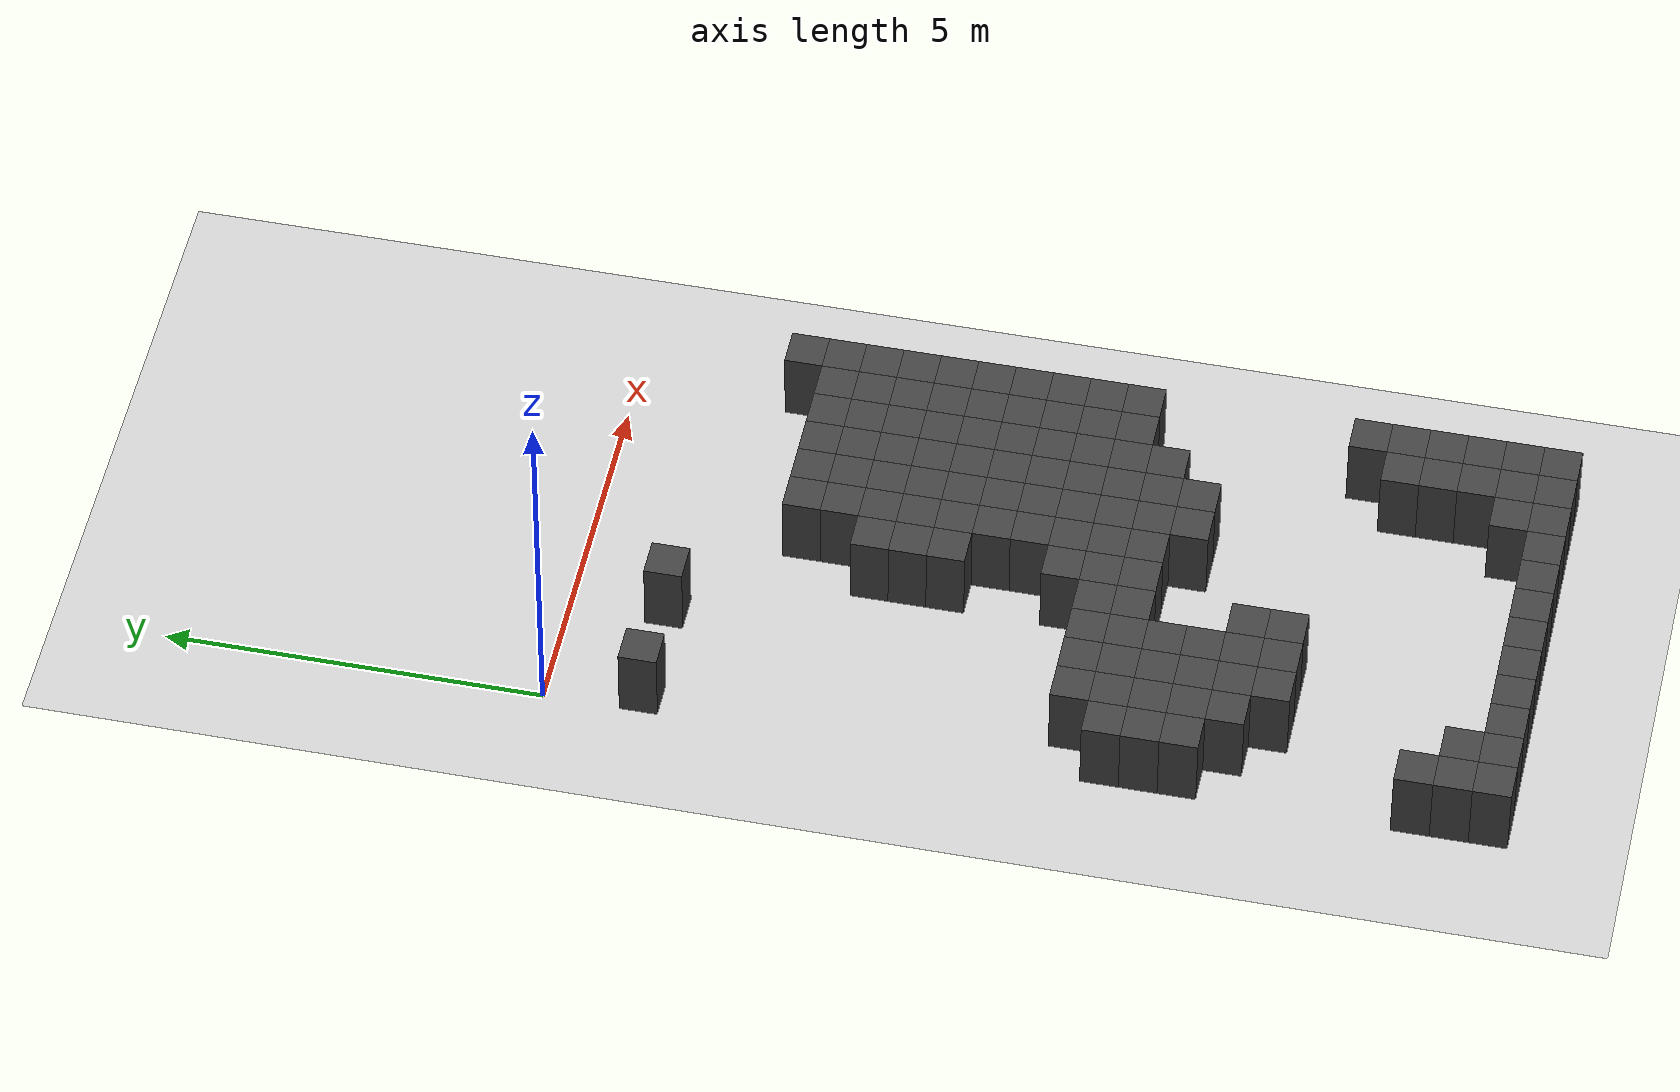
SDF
<sdf version="1.7">
 <world name="map_9061">
  <model name="ground_plane">
   <static>true</static>
   <link name="link">
    <collision name="collision">
     <geometry><plane><normal>0 0 1</normal><size>200 200</size></plane></geometry>
    </collision>
    <visual name="visual">
     <geometry><plane><normal>0 0 1</normal><size>200 200</size></plane></geometry>
     <material><ambient>0.8 0.8 0.8 1</ambient><diffuse>0.8 0.8 0.8 1</diffuse></material>
    </visual>
   </link>
  </model>
  <model name="maze_environment">
   <static>true</static>
   <link name="wall_460">
    <pose>0.250 -1.250 0.500 0 0 0</pose>
    <collision name="col"><geometry><box><size>0.5 0.5 1.0</size></box></geometry></collision>
    <visual name="vis">
     <geometry><box><size>0.5 0.5 1.0</size></box></geometry>
     <material><ambient>0.15 0.15 0.15 1</ambient><diffuse>0.25 0.25 0.25 1</diffuse></material>
    </visual>
   </link>
   <link name="wall_461">
    <pose>1.750 -1.250 0.500 0 0 0</pose>
    <collision name="col"><geometry><box><size>0.5 0.5 1.0</size></box></geometry></collision>
    <visual name="vis">
     <geometry><box><size>0.5 0.5 1.0</size></box></geometry>
     <material><ambient>0.15 0.15 0.15 1</ambient><diffuse>0.25 0.25 0.25 1</diffuse></material>
    </visual>
   </link>
   <link name="wall_498">
    <pose>5.750 -2.250 0.500 0 0 0</pose>
    <collision name="col"><geometry><box><size>0.5 0.5 1.0</size></box></geometry></collision>
    <visual name="vis">
     <geometry><box><size>0.5 0.5 1.0</size></box></geometry>
     <material><ambient>0.15 0.15 0.15 1</ambient><diffuse>0.25 0.25 0.25 1</diffuse></material>
    </visual>
   </link>
   <link name="wall_524">
    <pose>3.250 -2.750 0.500 0 0 0</pose>
    <collision name="col"><geometry><box><size>0.5 0.5 1.0</size></box></geometry></collision>
    <visual name="vis">
     <geometry><box><size>0.5 0.5 1.0</size></box></geometry>
     <material><ambient>0.15 0.15 0.15 1</ambient><diffuse>0.25 0.25 0.25 1</diffuse></material>
    </visual>
   </link>
   <link name="wall_525">
    <pose>3.750 -2.750 0.500 0 0 0</pose>
    <collision name="col"><geometry><box><size>0.5 0.5 1.0</size></box></geometry></collision>
    <visual name="vis">
     <geometry><box><size>0.5 0.5 1.0</size></box></geometry>
     <material><ambient>0.15 0.15 0.15 1</ambient><diffuse>0.25 0.25 0.25 1</diffuse></material>
    </visual>
   </link>
   <link name="wall_526">
    <pose>4.250 -2.750 0.500 0 0 0</pose>
    <collision name="col"><geometry><box><size>0.5 0.5 1.0</size></box></geometry></collision>
    <visual name="vis">
     <geometry><box><size>0.5 0.5 1.0</size></box></geometry>
     <material><ambient>0.15 0.15 0.15 1</ambient><diffuse>0.25 0.25 0.25 1</diffuse></material>
    </visual>
   </link>
   <link name="wall_527">
    <pose>4.750 -2.750 0.500 0 0 0</pose>
    <collision name="col"><geometry><box><size>0.5 0.5 1.0</size></box></geometry></collision>
    <visual name="vis">
     <geometry><box><size>0.5 0.5 1.0</size></box></geometry>
     <material><ambient>0.15 0.15 0.15 1</ambient><diffuse>0.25 0.25 0.25 1</diffuse></material>
    </visual>
   </link>
   <link name="wall_528">
    <pose>5.250 -2.750 0.500 0 0 0</pose>
    <collision name="col"><geometry><box><size>0.5 0.5 1.0</size></box></geometry></collision>
    <visual name="vis">
     <geometry><box><size>0.5 0.5 1.0</size></box></geometry>
     <material><ambient>0.15 0.15 0.15 1</ambient><diffuse>0.25 0.25 0.25 1</diffuse></material>
    </visual>
   </link>
   <link name="wall_529">
    <pose>5.750 -2.750 0.500 0 0 0</pose>
    <collision name="col"><geometry><box><size>0.5 0.5 1.0</size></box></geometry></collision>
    <visual name="vis">
     <geometry><box><size>0.5 0.5 1.0</size></box></geometry>
     <material><ambient>0.15 0.15 0.15 1</ambient><diffuse>0.25 0.25 0.25 1</diffuse></material>
    </visual>
   </link>
   <link name="wall_555">
    <pose>3.250 -3.250 0.500 0 0 0</pose>
    <collision name="col"><geometry><box><size>0.5 0.5 1.0</size></box></geometry></collision>
    <visual name="vis">
     <geometry><box><size>0.5 0.5 1.0</size></box></geometry>
     <material><ambient>0.15 0.15 0.15 1</ambient><diffuse>0.25 0.25 0.25 1</diffuse></material>
    </visual>
   </link>
   <link name="wall_556">
    <pose>3.750 -3.250 0.500 0 0 0</pose>
    <collision name="col"><geometry><box><size>0.5 0.5 1.0</size></box></geometry></collision>
    <visual name="vis">
     <geometry><box><size>0.5 0.5 1.0</size></box></geometry>
     <material><ambient>0.15 0.15 0.15 1</ambient><diffuse>0.25 0.25 0.25 1</diffuse></material>
    </visual>
   </link>
   <link name="wall_557">
    <pose>4.250 -3.250 0.500 0 0 0</pose>
    <collision name="col"><geometry><box><size>0.5 0.5 1.0</size></box></geometry></collision>
    <visual name="vis">
     <geometry><box><size>0.5 0.5 1.0</size></box></geometry>
     <material><ambient>0.15 0.15 0.15 1</ambient><diffuse>0.25 0.25 0.25 1</diffuse></material>
    </visual>
   </link>
   <link name="wall_558">
    <pose>4.750 -3.250 0.500 0 0 0</pose>
    <collision name="col"><geometry><box><size>0.5 0.5 1.0</size></box></geometry></collision>
    <visual name="vis">
     <geometry><box><size>0.5 0.5 1.0</size></box></geometry>
     <material><ambient>0.15 0.15 0.15 1</ambient><diffuse>0.25 0.25 0.25 1</diffuse></material>
    </visual>
   </link>
   <link name="wall_559">
    <pose>5.250 -3.250 0.500 0 0 0</pose>
    <collision name="col"><geometry><box><size>0.5 0.5 1.0</size></box></geometry></collision>
    <visual name="vis">
     <geometry><box><size>0.5 0.5 1.0</size></box></geometry>
     <material><ambient>0.15 0.15 0.15 1</ambient><diffuse>0.25 0.25 0.25 1</diffuse></material>
    </visual>
   </link>
   <link name="wall_560">
    <pose>5.750 -3.250 0.500 0 0 0</pose>
    <collision name="col"><geometry><box><size>0.5 0.5 1.0</size></box></geometry></collision>
    <visual name="vis">
     <geometry><box><size>0.5 0.5 1.0</size></box></geometry>
     <material><ambient>0.15 0.15 0.15 1</ambient><diffuse>0.25 0.25 0.25 1</diffuse></material>
    </visual>
   </link>
   <link name="wall_584">
    <pose>2.750 -3.750 0.500 0 0 0</pose>
    <collision name="col"><geometry><box><size>0.5 0.5 1.0</size></box></geometry></collision>
    <visual name="vis">
     <geometry><box><size>0.5 0.5 1.0</size></box></geometry>
     <material><ambient>0.15 0.15 0.15 1</ambient><diffuse>0.25 0.25 0.25 1</diffuse></material>
    </visual>
   </link>
   <link name="wall_585">
    <pose>3.250 -3.750 0.500 0 0 0</pose>
    <collision name="col"><geometry><box><size>0.5 0.5 1.0</size></box></geometry></collision>
    <visual name="vis">
     <geometry><box><size>0.5 0.5 1.0</size></box></geometry>
     <material><ambient>0.15 0.15 0.15 1</ambient><diffuse>0.25 0.25 0.25 1</diffuse></material>
    </visual>
   </link>
   <link name="wall_586">
    <pose>3.750 -3.750 0.500 0 0 0</pose>
    <collision name="col"><geometry><box><size>0.5 0.5 1.0</size></box></geometry></collision>
    <visual name="vis">
     <geometry><box><size>0.5 0.5 1.0</size></box></geometry>
     <material><ambient>0.15 0.15 0.15 1</ambient><diffuse>0.25 0.25 0.25 1</diffuse></material>
    </visual>
   </link>
   <link name="wall_587">
    <pose>4.250 -3.750 0.500 0 0 0</pose>
    <collision name="col"><geometry><box><size>0.5 0.5 1.0</size></box></geometry></collision>
    <visual name="vis">
     <geometry><box><size>0.5 0.5 1.0</size></box></geometry>
     <material><ambient>0.15 0.15 0.15 1</ambient><diffuse>0.25 0.25 0.25 1</diffuse></material>
    </visual>
   </link>
   <link name="wall_588">
    <pose>4.750 -3.750 0.500 0 0 0</pose>
    <collision name="col"><geometry><box><size>0.5 0.5 1.0</size></box></geometry></collision>
    <visual name="vis">
     <geometry><box><size>0.5 0.5 1.0</size></box></geometry>
     <material><ambient>0.15 0.15 0.15 1</ambient><diffuse>0.25 0.25 0.25 1</diffuse></material>
    </visual>
   </link>
   <link name="wall_589">
    <pose>5.250 -3.750 0.500 0 0 0</pose>
    <collision name="col"><geometry><box><size>0.5 0.5 1.0</size></box></geometry></collision>
    <visual name="vis">
     <geometry><box><size>0.5 0.5 1.0</size></box></geometry>
     <material><ambient>0.15 0.15 0.15 1</ambient><diffuse>0.25 0.25 0.25 1</diffuse></material>
    </visual>
   </link>
   <link name="wall_590">
    <pose>5.750 -3.750 0.500 0 0 0</pose>
    <collision name="col"><geometry><box><size>0.5 0.5 1.0</size></box></geometry></collision>
    <visual name="vis">
     <geometry><box><size>0.5 0.5 1.0</size></box></geometry>
     <material><ambient>0.15 0.15 0.15 1</ambient><diffuse>0.25 0.25 0.25 1</diffuse></material>
    </visual>
   </link>
   <link name="wall_610">
    <pose>2.750 -4.250 0.500 0 0 0</pose>
    <collision name="col"><geometry><box><size>0.5 0.5 1.0</size></box></geometry></collision>
    <visual name="vis">
     <geometry><box><size>0.5 0.5 1.0</size></box></geometry>
     <material><ambient>0.15 0.15 0.15 1</ambient><diffuse>0.25 0.25 0.25 1</diffuse></material>
    </visual>
   </link>
   <link name="wall_611">
    <pose>3.250 -4.250 0.500 0 0 0</pose>
    <collision name="col"><geometry><box><size>0.5 0.5 1.0</size></box></geometry></collision>
    <visual name="vis">
     <geometry><box><size>0.5 0.5 1.0</size></box></geometry>
     <material><ambient>0.15 0.15 0.15 1</ambient><diffuse>0.25 0.25 0.25 1</diffuse></material>
    </visual>
   </link>
   <link name="wall_612">
    <pose>3.750 -4.250 0.500 0 0 0</pose>
    <collision name="col"><geometry><box><size>0.5 0.5 1.0</size></box></geometry></collision>
    <visual name="vis">
     <geometry><box><size>0.5 0.5 1.0</size></box></geometry>
     <material><ambient>0.15 0.15 0.15 1</ambient><diffuse>0.25 0.25 0.25 1</diffuse></material>
    </visual>
   </link>
   <link name="wall_613">
    <pose>4.250 -4.250 0.500 0 0 0</pose>
    <collision name="col"><geometry><box><size>0.5 0.5 1.0</size></box></geometry></collision>
    <visual name="vis">
     <geometry><box><size>0.5 0.5 1.0</size></box></geometry>
     <material><ambient>0.15 0.15 0.15 1</ambient><diffuse>0.25 0.25 0.25 1</diffuse></material>
    </visual>
   </link>
   <link name="wall_614">
    <pose>4.750 -4.250 0.500 0 0 0</pose>
    <collision name="col"><geometry><box><size>0.5 0.5 1.0</size></box></geometry></collision>
    <visual name="vis">
     <geometry><box><size>0.5 0.5 1.0</size></box></geometry>
     <material><ambient>0.15 0.15 0.15 1</ambient><diffuse>0.25 0.25 0.25 1</diffuse></material>
    </visual>
   </link>
   <link name="wall_615">
    <pose>5.250 -4.250 0.500 0 0 0</pose>
    <collision name="col"><geometry><box><size>0.5 0.5 1.0</size></box></geometry></collision>
    <visual name="vis">
     <geometry><box><size>0.5 0.5 1.0</size></box></geometry>
     <material><ambient>0.15 0.15 0.15 1</ambient><diffuse>0.25 0.25 0.25 1</diffuse></material>
    </visual>
   </link>
   <link name="wall_616">
    <pose>5.750 -4.250 0.500 0 0 0</pose>
    <collision name="col"><geometry><box><size>0.5 0.5 1.0</size></box></geometry></collision>
    <visual name="vis">
     <geometry><box><size>0.5 0.5 1.0</size></box></geometry>
     <material><ambient>0.15 0.15 0.15 1</ambient><diffuse>0.25 0.25 0.25 1</diffuse></material>
    </visual>
   </link>
   <link name="wall_630">
    <pose>2.750 -4.750 0.500 0 0 0</pose>
    <collision name="col"><geometry><box><size>0.5 0.5 1.0</size></box></geometry></collision>
    <visual name="vis">
     <geometry><box><size>0.5 0.5 1.0</size></box></geometry>
     <material><ambient>0.15 0.15 0.15 1</ambient><diffuse>0.25 0.25 0.25 1</diffuse></material>
    </visual>
   </link>
   <link name="wall_631">
    <pose>3.250 -4.750 0.500 0 0 0</pose>
    <collision name="col"><geometry><box><size>0.5 0.5 1.0</size></box></geometry></collision>
    <visual name="vis">
     <geometry><box><size>0.5 0.5 1.0</size></box></geometry>
     <material><ambient>0.15 0.15 0.15 1</ambient><diffuse>0.25 0.25 0.25 1</diffuse></material>
    </visual>
   </link>
   <link name="wall_632">
    <pose>3.750 -4.750 0.500 0 0 0</pose>
    <collision name="col"><geometry><box><size>0.5 0.5 1.0</size></box></geometry></collision>
    <visual name="vis">
     <geometry><box><size>0.5 0.5 1.0</size></box></geometry>
     <material><ambient>0.15 0.15 0.15 1</ambient><diffuse>0.25 0.25 0.25 1</diffuse></material>
    </visual>
   </link>
   <link name="wall_633">
    <pose>4.250 -4.750 0.500 0 0 0</pose>
    <collision name="col"><geometry><box><size>0.5 0.5 1.0</size></box></geometry></collision>
    <visual name="vis">
     <geometry><box><size>0.5 0.5 1.0</size></box></geometry>
     <material><ambient>0.15 0.15 0.15 1</ambient><diffuse>0.25 0.25 0.25 1</diffuse></material>
    </visual>
   </link>
   <link name="wall_634">
    <pose>4.750 -4.750 0.500 0 0 0</pose>
    <collision name="col"><geometry><box><size>0.5 0.5 1.0</size></box></geometry></collision>
    <visual name="vis">
     <geometry><box><size>0.5 0.5 1.0</size></box></geometry>
     <material><ambient>0.15 0.15 0.15 1</ambient><diffuse>0.25 0.25 0.25 1</diffuse></material>
    </visual>
   </link>
   <link name="wall_635">
    <pose>5.250 -4.750 0.500 0 0 0</pose>
    <collision name="col"><geometry><box><size>0.5 0.5 1.0</size></box></geometry></collision>
    <visual name="vis">
     <geometry><box><size>0.5 0.5 1.0</size></box></geometry>
     <material><ambient>0.15 0.15 0.15 1</ambient><diffuse>0.25 0.25 0.25 1</diffuse></material>
    </visual>
   </link>
   <link name="wall_636">
    <pose>5.750 -4.750 0.500 0 0 0</pose>
    <collision name="col"><geometry><box><size>0.5 0.5 1.0</size></box></geometry></collision>
    <visual name="vis">
     <geometry><box><size>0.5 0.5 1.0</size></box></geometry>
     <material><ambient>0.15 0.15 0.15 1</ambient><diffuse>0.25 0.25 0.25 1</diffuse></material>
    </visual>
   </link>
   <link name="wall_646">
    <pose>3.250 -5.250 0.500 0 0 0</pose>
    <collision name="col"><geometry><box><size>0.5 0.5 1.0</size></box></geometry></collision>
    <visual name="vis">
     <geometry><box><size>0.5 0.5 1.0</size></box></geometry>
     <material><ambient>0.15 0.15 0.15 1</ambient><diffuse>0.25 0.25 0.25 1</diffuse></material>
    </visual>
   </link>
   <link name="wall_647">
    <pose>3.750 -5.250 0.500 0 0 0</pose>
    <collision name="col"><geometry><box><size>0.5 0.5 1.0</size></box></geometry></collision>
    <visual name="vis">
     <geometry><box><size>0.5 0.5 1.0</size></box></geometry>
     <material><ambient>0.15 0.15 0.15 1</ambient><diffuse>0.25 0.25 0.25 1</diffuse></material>
    </visual>
   </link>
   <link name="wall_648">
    <pose>4.250 -5.250 0.500 0 0 0</pose>
    <collision name="col"><geometry><box><size>0.5 0.5 1.0</size></box></geometry></collision>
    <visual name="vis">
     <geometry><box><size>0.5 0.5 1.0</size></box></geometry>
     <material><ambient>0.15 0.15 0.15 1</ambient><diffuse>0.25 0.25 0.25 1</diffuse></material>
    </visual>
   </link>
   <link name="wall_649">
    <pose>4.750 -5.250 0.500 0 0 0</pose>
    <collision name="col"><geometry><box><size>0.5 0.5 1.0</size></box></geometry></collision>
    <visual name="vis">
     <geometry><box><size>0.5 0.5 1.0</size></box></geometry>
     <material><ambient>0.15 0.15 0.15 1</ambient><diffuse>0.25 0.25 0.25 1</diffuse></material>
    </visual>
   </link>
   <link name="wall_650">
    <pose>5.250 -5.250 0.500 0 0 0</pose>
    <collision name="col"><geometry><box><size>0.5 0.5 1.0</size></box></geometry></collision>
    <visual name="vis">
     <geometry><box><size>0.5 0.5 1.0</size></box></geometry>
     <material><ambient>0.15 0.15 0.15 1</ambient><diffuse>0.25 0.25 0.25 1</diffuse></material>
    </visual>
   </link>
   <link name="wall_651">
    <pose>5.750 -5.250 0.500 0 0 0</pose>
    <collision name="col"><geometry><box><size>0.5 0.5 1.0</size></box></geometry></collision>
    <visual name="vis">
     <geometry><box><size>0.5 0.5 1.0</size></box></geometry>
     <material><ambient>0.15 0.15 0.15 1</ambient><diffuse>0.25 0.25 0.25 1</diffuse></material>
    </visual>
   </link>
   <link name="wall_661">
    <pose>3.250 -5.750 0.500 0 0 0</pose>
    <collision name="col"><geometry><box><size>0.5 0.5 1.0</size></box></geometry></collision>
    <visual name="vis">
     <geometry><box><size>0.5 0.5 1.0</size></box></geometry>
     <material><ambient>0.15 0.15 0.15 1</ambient><diffuse>0.25 0.25 0.25 1</diffuse></material>
    </visual>
   </link>
   <link name="wall_662">
    <pose>3.750 -5.750 0.500 0 0 0</pose>
    <collision name="col"><geometry><box><size>0.5 0.5 1.0</size></box></geometry></collision>
    <visual name="vis">
     <geometry><box><size>0.5 0.5 1.0</size></box></geometry>
     <material><ambient>0.15 0.15 0.15 1</ambient><diffuse>0.25 0.25 0.25 1</diffuse></material>
    </visual>
   </link>
   <link name="wall_663">
    <pose>4.250 -5.750 0.500 0 0 0</pose>
    <collision name="col"><geometry><box><size>0.5 0.5 1.0</size></box></geometry></collision>
    <visual name="vis">
     <geometry><box><size>0.5 0.5 1.0</size></box></geometry>
     <material><ambient>0.15 0.15 0.15 1</ambient><diffuse>0.25 0.25 0.25 1</diffuse></material>
    </visual>
   </link>
   <link name="wall_664">
    <pose>4.750 -5.750 0.500 0 0 0</pose>
    <collision name="col"><geometry><box><size>0.5 0.5 1.0</size></box></geometry></collision>
    <visual name="vis">
     <geometry><box><size>0.5 0.5 1.0</size></box></geometry>
     <material><ambient>0.15 0.15 0.15 1</ambient><diffuse>0.25 0.25 0.25 1</diffuse></material>
    </visual>
   </link>
   <link name="wall_665">
    <pose>5.250 -5.750 0.500 0 0 0</pose>
    <collision name="col"><geometry><box><size>0.5 0.5 1.0</size></box></geometry></collision>
    <visual name="vis">
     <geometry><box><size>0.5 0.5 1.0</size></box></geometry>
     <material><ambient>0.15 0.15 0.15 1</ambient><diffuse>0.25 0.25 0.25 1</diffuse></material>
    </visual>
   </link>
   <link name="wall_666">
    <pose>5.750 -5.750 0.500 0 0 0</pose>
    <collision name="col"><geometry><box><size>0.5 0.5 1.0</size></box></geometry></collision>
    <visual name="vis">
     <geometry><box><size>0.5 0.5 1.0</size></box></geometry>
     <material><ambient>0.15 0.15 0.15 1</ambient><diffuse>0.25 0.25 0.25 1</diffuse></material>
    </visual>
   </link>
   <link name="wall_678">
    <pose>2.750 -6.250 0.500 0 0 0</pose>
    <collision name="col"><geometry><box><size>0.5 0.5 1.0</size></box></geometry></collision>
    <visual name="vis">
     <geometry><box><size>0.5 0.5 1.0</size></box></geometry>
     <material><ambient>0.15 0.15 0.15 1</ambient><diffuse>0.25 0.25 0.25 1</diffuse></material>
    </visual>
   </link>
   <link name="wall_679">
    <pose>3.250 -6.250 0.500 0 0 0</pose>
    <collision name="col"><geometry><box><size>0.5 0.5 1.0</size></box></geometry></collision>
    <visual name="vis">
     <geometry><box><size>0.5 0.5 1.0</size></box></geometry>
     <material><ambient>0.15 0.15 0.15 1</ambient><diffuse>0.25 0.25 0.25 1</diffuse></material>
    </visual>
   </link>
   <link name="wall_680">
    <pose>3.750 -6.250 0.500 0 0 0</pose>
    <collision name="col"><geometry><box><size>0.5 0.5 1.0</size></box></geometry></collision>
    <visual name="vis">
     <geometry><box><size>0.5 0.5 1.0</size></box></geometry>
     <material><ambient>0.15 0.15 0.15 1</ambient><diffuse>0.25 0.25 0.25 1</diffuse></material>
    </visual>
   </link>
   <link name="wall_681">
    <pose>4.250 -6.250 0.500 0 0 0</pose>
    <collision name="col"><geometry><box><size>0.5 0.5 1.0</size></box></geometry></collision>
    <visual name="vis">
     <geometry><box><size>0.5 0.5 1.0</size></box></geometry>
     <material><ambient>0.15 0.15 0.15 1</ambient><diffuse>0.25 0.25 0.25 1</diffuse></material>
    </visual>
   </link>
   <link name="wall_682">
    <pose>4.750 -6.250 0.500 0 0 0</pose>
    <collision name="col"><geometry><box><size>0.5 0.5 1.0</size></box></geometry></collision>
    <visual name="vis">
     <geometry><box><size>0.5 0.5 1.0</size></box></geometry>
     <material><ambient>0.15 0.15 0.15 1</ambient><diffuse>0.25 0.25 0.25 1</diffuse></material>
    </visual>
   </link>
   <link name="wall_683">
    <pose>5.250 -6.250 0.500 0 0 0</pose>
    <collision name="col"><geometry><box><size>0.5 0.5 1.0</size></box></geometry></collision>
    <visual name="vis">
     <geometry><box><size>0.5 0.5 1.0</size></box></geometry>
     <material><ambient>0.15 0.15 0.15 1</ambient><diffuse>0.25 0.25 0.25 1</diffuse></material>
    </visual>
   </link>
   <link name="wall_684">
    <pose>5.750 -6.250 0.500 0 0 0</pose>
    <collision name="col"><geometry><box><size>0.5 0.5 1.0</size></box></geometry></collision>
    <visual name="vis">
     <geometry><box><size>0.5 0.5 1.0</size></box></geometry>
     <material><ambient>0.15 0.15 0.15 1</ambient><diffuse>0.25 0.25 0.25 1</diffuse></material>
    </visual>
   </link>
   <link name="wall_695">
    <pose>0.750 -6.750 0.500 0 0 0</pose>
    <collision name="col"><geometry><box><size>0.5 0.5 1.0</size></box></geometry></collision>
    <visual name="vis">
     <geometry><box><size>0.5 0.5 1.0</size></box></geometry>
     <material><ambient>0.15 0.15 0.15 1</ambient><diffuse>0.25 0.25 0.25 1</diffuse></material>
    </visual>
   </link>
   <link name="wall_696">
    <pose>1.250 -6.750 0.500 0 0 0</pose>
    <collision name="col"><geometry><box><size>0.5 0.5 1.0</size></box></geometry></collision>
    <visual name="vis">
     <geometry><box><size>0.5 0.5 1.0</size></box></geometry>
     <material><ambient>0.15 0.15 0.15 1</ambient><diffuse>0.25 0.25 0.25 1</diffuse></material>
    </visual>
   </link>
   <link name="wall_697">
    <pose>1.750 -6.750 0.500 0 0 0</pose>
    <collision name="col"><geometry><box><size>0.5 0.5 1.0</size></box></geometry></collision>
    <visual name="vis">
     <geometry><box><size>0.5 0.5 1.0</size></box></geometry>
     <material><ambient>0.15 0.15 0.15 1</ambient><diffuse>0.25 0.25 0.25 1</diffuse></material>
    </visual>
   </link>
   <link name="wall_698">
    <pose>2.250 -6.750 0.500 0 0 0</pose>
    <collision name="col"><geometry><box><size>0.5 0.5 1.0</size></box></geometry></collision>
    <visual name="vis">
     <geometry><box><size>0.5 0.5 1.0</size></box></geometry>
     <material><ambient>0.15 0.15 0.15 1</ambient><diffuse>0.25 0.25 0.25 1</diffuse></material>
    </visual>
   </link>
   <link name="wall_699">
    <pose>2.750 -6.750 0.500 0 0 0</pose>
    <collision name="col"><geometry><box><size>0.5 0.5 1.0</size></box></geometry></collision>
    <visual name="vis">
     <geometry><box><size>0.5 0.5 1.0</size></box></geometry>
     <material><ambient>0.15 0.15 0.15 1</ambient><diffuse>0.25 0.25 0.25 1</diffuse></material>
    </visual>
   </link>
   <link name="wall_700">
    <pose>3.250 -6.750 0.500 0 0 0</pose>
    <collision name="col"><geometry><box><size>0.5 0.5 1.0</size></box></geometry></collision>
    <visual name="vis">
     <geometry><box><size>0.5 0.5 1.0</size></box></geometry>
     <material><ambient>0.15 0.15 0.15 1</ambient><diffuse>0.25 0.25 0.25 1</diffuse></material>
    </visual>
   </link>
   <link name="wall_701">
    <pose>3.750 -6.750 0.500 0 0 0</pose>
    <collision name="col"><geometry><box><size>0.5 0.5 1.0</size></box></geometry></collision>
    <visual name="vis">
     <geometry><box><size>0.5 0.5 1.0</size></box></geometry>
     <material><ambient>0.15 0.15 0.15 1</ambient><diffuse>0.25 0.25 0.25 1</diffuse></material>
    </visual>
   </link>
   <link name="wall_702">
    <pose>4.250 -6.750 0.500 0 0 0</pose>
    <collision name="col"><geometry><box><size>0.5 0.5 1.0</size></box></geometry></collision>
    <visual name="vis">
     <geometry><box><size>0.5 0.5 1.0</size></box></geometry>
     <material><ambient>0.15 0.15 0.15 1</ambient><diffuse>0.25 0.25 0.25 1</diffuse></material>
    </visual>
   </link>
   <link name="wall_703">
    <pose>4.750 -6.750 0.500 0 0 0</pose>
    <collision name="col"><geometry><box><size>0.5 0.5 1.0</size></box></geometry></collision>
    <visual name="vis">
     <geometry><box><size>0.5 0.5 1.0</size></box></geometry>
     <material><ambient>0.15 0.15 0.15 1</ambient><diffuse>0.25 0.25 0.25 1</diffuse></material>
    </visual>
   </link>
   <link name="wall_704">
    <pose>5.250 -6.750 0.500 0 0 0</pose>
    <collision name="col"><geometry><box><size>0.5 0.5 1.0</size></box></geometry></collision>
    <visual name="vis">
     <geometry><box><size>0.5 0.5 1.0</size></box></geometry>
     <material><ambient>0.15 0.15 0.15 1</ambient><diffuse>0.25 0.25 0.25 1</diffuse></material>
    </visual>
   </link>
   <link name="wall_705">
    <pose>5.750 -6.750 0.500 0 0 0</pose>
    <collision name="col"><geometry><box><size>0.5 0.5 1.0</size></box></geometry></collision>
    <visual name="vis">
     <geometry><box><size>0.5 0.5 1.0</size></box></geometry>
     <material><ambient>0.15 0.15 0.15 1</ambient><diffuse>0.25 0.25 0.25 1</diffuse></material>
    </visual>
   </link>
   <link name="wall_713">
    <pose>0.250 -7.250 0.500 0 0 0</pose>
    <collision name="col"><geometry><box><size>0.5 0.5 1.0</size></box></geometry></collision>
    <visual name="vis">
     <geometry><box><size>0.5 0.5 1.0</size></box></geometry>
     <material><ambient>0.15 0.15 0.15 1</ambient><diffuse>0.25 0.25 0.25 1</diffuse></material>
    </visual>
   </link>
   <link name="wall_714">
    <pose>0.750 -7.250 0.500 0 0 0</pose>
    <collision name="col"><geometry><box><size>0.5 0.5 1.0</size></box></geometry></collision>
    <visual name="vis">
     <geometry><box><size>0.5 0.5 1.0</size></box></geometry>
     <material><ambient>0.15 0.15 0.15 1</ambient><diffuse>0.25 0.25 0.25 1</diffuse></material>
    </visual>
   </link>
   <link name="wall_715">
    <pose>1.250 -7.250 0.500 0 0 0</pose>
    <collision name="col"><geometry><box><size>0.5 0.5 1.0</size></box></geometry></collision>
    <visual name="vis">
     <geometry><box><size>0.5 0.5 1.0</size></box></geometry>
     <material><ambient>0.15 0.15 0.15 1</ambient><diffuse>0.25 0.25 0.25 1</diffuse></material>
    </visual>
   </link>
   <link name="wall_716">
    <pose>1.750 -7.250 0.500 0 0 0</pose>
    <collision name="col"><geometry><box><size>0.5 0.5 1.0</size></box></geometry></collision>
    <visual name="vis">
     <geometry><box><size>0.5 0.5 1.0</size></box></geometry>
     <material><ambient>0.15 0.15 0.15 1</ambient><diffuse>0.25 0.25 0.25 1</diffuse></material>
    </visual>
   </link>
   <link name="wall_717">
    <pose>2.250 -7.250 0.500 0 0 0</pose>
    <collision name="col"><geometry><box><size>0.5 0.5 1.0</size></box></geometry></collision>
    <visual name="vis">
     <geometry><box><size>0.5 0.5 1.0</size></box></geometry>
     <material><ambient>0.15 0.15 0.15 1</ambient><diffuse>0.25 0.25 0.25 1</diffuse></material>
    </visual>
   </link>
   <link name="wall_718">
    <pose>2.750 -7.250 0.500 0 0 0</pose>
    <collision name="col"><geometry><box><size>0.5 0.5 1.0</size></box></geometry></collision>
    <visual name="vis">
     <geometry><box><size>0.5 0.5 1.0</size></box></geometry>
     <material><ambient>0.15 0.15 0.15 1</ambient><diffuse>0.25 0.25 0.25 1</diffuse></material>
    </visual>
   </link>
   <link name="wall_719">
    <pose>3.250 -7.250 0.500 0 0 0</pose>
    <collision name="col"><geometry><box><size>0.5 0.5 1.0</size></box></geometry></collision>
    <visual name="vis">
     <geometry><box><size>0.5 0.5 1.0</size></box></geometry>
     <material><ambient>0.15 0.15 0.15 1</ambient><diffuse>0.25 0.25 0.25 1</diffuse></material>
    </visual>
   </link>
   <link name="wall_720">
    <pose>3.750 -7.250 0.500 0 0 0</pose>
    <collision name="col"><geometry><box><size>0.5 0.5 1.0</size></box></geometry></collision>
    <visual name="vis">
     <geometry><box><size>0.5 0.5 1.0</size></box></geometry>
     <material><ambient>0.15 0.15 0.15 1</ambient><diffuse>0.25 0.25 0.25 1</diffuse></material>
    </visual>
   </link>
   <link name="wall_721">
    <pose>4.250 -7.250 0.500 0 0 0</pose>
    <collision name="col"><geometry><box><size>0.5 0.5 1.0</size></box></geometry></collision>
    <visual name="vis">
     <geometry><box><size>0.5 0.5 1.0</size></box></geometry>
     <material><ambient>0.15 0.15 0.15 1</ambient><diffuse>0.25 0.25 0.25 1</diffuse></material>
    </visual>
   </link>
   <link name="wall_722">
    <pose>4.750 -7.250 0.500 0 0 0</pose>
    <collision name="col"><geometry><box><size>0.5 0.5 1.0</size></box></geometry></collision>
    <visual name="vis">
     <geometry><box><size>0.5 0.5 1.0</size></box></geometry>
     <material><ambient>0.15 0.15 0.15 1</ambient><diffuse>0.25 0.25 0.25 1</diffuse></material>
    </visual>
   </link>
   <link name="wall_730">
    <pose>0.250 -7.750 0.500 0 0 0</pose>
    <collision name="col"><geometry><box><size>0.5 0.5 1.0</size></box></geometry></collision>
    <visual name="vis">
     <geometry><box><size>0.5 0.5 1.0</size></box></geometry>
     <material><ambient>0.15 0.15 0.15 1</ambient><diffuse>0.25 0.25 0.25 1</diffuse></material>
    </visual>
   </link>
   <link name="wall_731">
    <pose>0.750 -7.750 0.500 0 0 0</pose>
    <collision name="col"><geometry><box><size>0.5 0.5 1.0</size></box></geometry></collision>
    <visual name="vis">
     <geometry><box><size>0.5 0.5 1.0</size></box></geometry>
     <material><ambient>0.15 0.15 0.15 1</ambient><diffuse>0.25 0.25 0.25 1</diffuse></material>
    </visual>
   </link>
   <link name="wall_732">
    <pose>1.250 -7.750 0.500 0 0 0</pose>
    <collision name="col"><geometry><box><size>0.5 0.5 1.0</size></box></geometry></collision>
    <visual name="vis">
     <geometry><box><size>0.5 0.5 1.0</size></box></geometry>
     <material><ambient>0.15 0.15 0.15 1</ambient><diffuse>0.25 0.25 0.25 1</diffuse></material>
    </visual>
   </link>
   <link name="wall_733">
    <pose>1.750 -7.750 0.500 0 0 0</pose>
    <collision name="col"><geometry><box><size>0.5 0.5 1.0</size></box></geometry></collision>
    <visual name="vis">
     <geometry><box><size>0.5 0.5 1.0</size></box></geometry>
     <material><ambient>0.15 0.15 0.15 1</ambient><diffuse>0.25 0.25 0.25 1</diffuse></material>
    </visual>
   </link>
   <link name="wall_734">
    <pose>3.750 -7.750 0.500 0 0 0</pose>
    <collision name="col"><geometry><box><size>0.5 0.5 1.0</size></box></geometry></collision>
    <visual name="vis">
     <geometry><box><size>0.5 0.5 1.0</size></box></geometry>
     <material><ambient>0.15 0.15 0.15 1</ambient><diffuse>0.25 0.25 0.25 1</diffuse></material>
    </visual>
   </link>
   <link name="wall_735">
    <pose>4.250 -7.750 0.500 0 0 0</pose>
    <collision name="col"><geometry><box><size>0.5 0.5 1.0</size></box></geometry></collision>
    <visual name="vis">
     <geometry><box><size>0.5 0.5 1.0</size></box></geometry>
     <material><ambient>0.15 0.15 0.15 1</ambient><diffuse>0.25 0.25 0.25 1</diffuse></material>
    </visual>
   </link>
   <link name="wall_741">
    <pose>0.250 -8.250 0.500 0 0 0</pose>
    <collision name="col"><geometry><box><size>0.5 0.5 1.0</size></box></geometry></collision>
    <visual name="vis">
     <geometry><box><size>0.5 0.5 1.0</size></box></geometry>
     <material><ambient>0.15 0.15 0.15 1</ambient><diffuse>0.25 0.25 0.25 1</diffuse></material>
    </visual>
   </link>
   <link name="wall_742">
    <pose>0.750 -8.250 0.500 0 0 0</pose>
    <collision name="col"><geometry><box><size>0.5 0.5 1.0</size></box></geometry></collision>
    <visual name="vis">
     <geometry><box><size>0.5 0.5 1.0</size></box></geometry>
     <material><ambient>0.15 0.15 0.15 1</ambient><diffuse>0.25 0.25 0.25 1</diffuse></material>
    </visual>
   </link>
   <link name="wall_743">
    <pose>1.250 -8.250 0.500 0 0 0</pose>
    <collision name="col"><geometry><box><size>0.5 0.5 1.0</size></box></geometry></collision>
    <visual name="vis">
     <geometry><box><size>0.5 0.5 1.0</size></box></geometry>
     <material><ambient>0.15 0.15 0.15 1</ambient><diffuse>0.25 0.25 0.25 1</diffuse></material>
    </visual>
   </link>
   <link name="wall_744">
    <pose>1.750 -8.250 0.500 0 0 0</pose>
    <collision name="col"><geometry><box><size>0.5 0.5 1.0</size></box></geometry></collision>
    <visual name="vis">
     <geometry><box><size>0.5 0.5 1.0</size></box></geometry>
     <material><ambient>0.15 0.15 0.15 1</ambient><diffuse>0.25 0.25 0.25 1</diffuse></material>
    </visual>
   </link>
   <link name="wall_751">
    <pose>0.750 -8.750 0.500 0 0 0</pose>
    <collision name="col"><geometry><box><size>0.5 0.5 1.0</size></box></geometry></collision>
    <visual name="vis">
     <geometry><box><size>0.5 0.5 1.0</size></box></geometry>
     <material><ambient>0.15 0.15 0.15 1</ambient><diffuse>0.25 0.25 0.25 1</diffuse></material>
    </visual>
   </link>
   <link name="wall_752">
    <pose>1.250 -8.750 0.500 0 0 0</pose>
    <collision name="col"><geometry><box><size>0.5 0.5 1.0</size></box></geometry></collision>
    <visual name="vis">
     <geometry><box><size>0.5 0.5 1.0</size></box></geometry>
     <material><ambient>0.15 0.15 0.15 1</ambient><diffuse>0.25 0.25 0.25 1</diffuse></material>
    </visual>
   </link>
   <link name="wall_753">
    <pose>1.750 -8.750 0.500 0 0 0</pose>
    <collision name="col"><geometry><box><size>0.5 0.5 1.0</size></box></geometry></collision>
    <visual name="vis">
     <geometry><box><size>0.5 0.5 1.0</size></box></geometry>
     <material><ambient>0.15 0.15 0.15 1</ambient><diffuse>0.25 0.25 0.25 1</diffuse></material>
    </visual>
   </link>
   <link name="wall_754">
    <pose>2.250 -8.750 0.500 0 0 0</pose>
    <collision name="col"><geometry><box><size>0.5 0.5 1.0</size></box></geometry></collision>
    <visual name="vis">
     <geometry><box><size>0.5 0.5 1.0</size></box></geometry>
     <material><ambient>0.15 0.15 0.15 1</ambient><diffuse>0.25 0.25 0.25 1</diffuse></material>
    </visual>
   </link>
   <link name="wall_767">
    <pose>1.250 -9.250 0.500 0 0 0</pose>
    <collision name="col"><geometry><box><size>0.5 0.5 1.0</size></box></geometry></collision>
    <visual name="vis">
     <geometry><box><size>0.5 0.5 1.0</size></box></geometry>
     <material><ambient>0.15 0.15 0.15 1</ambient><diffuse>0.25 0.25 0.25 1</diffuse></material>
    </visual>
   </link>
   <link name="wall_768">
    <pose>1.750 -9.250 0.500 0 0 0</pose>
    <collision name="col"><geometry><box><size>0.5 0.5 1.0</size></box></geometry></collision>
    <visual name="vis">
     <geometry><box><size>0.5 0.5 1.0</size></box></geometry>
     <material><ambient>0.15 0.15 0.15 1</ambient><diffuse>0.25 0.25 0.25 1</diffuse></material>
    </visual>
   </link>
   <link name="wall_769">
    <pose>2.250 -9.250 0.500 0 0 0</pose>
    <collision name="col"><geometry><box><size>0.5 0.5 1.0</size></box></geometry></collision>
    <visual name="vis">
     <geometry><box><size>0.5 0.5 1.0</size></box></geometry>
     <material><ambient>0.15 0.15 0.15 1</ambient><diffuse>0.25 0.25 0.25 1</diffuse></material>
    </visual>
   </link>
   <link name="wall_784">
    <pose>5.750 -9.750 0.500 0 0 0</pose>
    <collision name="col"><geometry><box><size>0.5 0.5 1.0</size></box></geometry></collision>
    <visual name="vis">
     <geometry><box><size>0.5 0.5 1.0</size></box></geometry>
     <material><ambient>0.15 0.15 0.15 1</ambient><diffuse>0.25 0.25 0.25 1</diffuse></material>
    </visual>
   </link>
   <link name="wall_800">
    <pose>5.250 -10.250 0.500 0 0 0</pose>
    <collision name="col"><geometry><box><size>0.5 0.5 1.0</size></box></geometry></collision>
    <visual name="vis">
     <geometry><box><size>0.5 0.5 1.0</size></box></geometry>
     <material><ambient>0.15 0.15 0.15 1</ambient><diffuse>0.25 0.25 0.25 1</diffuse></material>
    </visual>
   </link>
   <link name="wall_801">
    <pose>5.750 -10.250 0.500 0 0 0</pose>
    <collision name="col"><geometry><box><size>0.5 0.5 1.0</size></box></geometry></collision>
    <visual name="vis">
     <geometry><box><size>0.5 0.5 1.0</size></box></geometry>
     <material><ambient>0.15 0.15 0.15 1</ambient><diffuse>0.25 0.25 0.25 1</diffuse></material>
    </visual>
   </link>
   <link name="wall_821">
    <pose>5.250 -10.750 0.500 0 0 0</pose>
    <collision name="col"><geometry><box><size>0.5 0.5 1.0</size></box></geometry></collision>
    <visual name="vis">
     <geometry><box><size>0.5 0.5 1.0</size></box></geometry>
     <material><ambient>0.15 0.15 0.15 1</ambient><diffuse>0.25 0.25 0.25 1</diffuse></material>
    </visual>
   </link>
   <link name="wall_822">
    <pose>5.750 -10.750 0.500 0 0 0</pose>
    <collision name="col"><geometry><box><size>0.5 0.5 1.0</size></box></geometry></collision>
    <visual name="vis">
     <geometry><box><size>0.5 0.5 1.0</size></box></geometry>
     <material><ambient>0.15 0.15 0.15 1</ambient><diffuse>0.25 0.25 0.25 1</diffuse></material>
    </visual>
   </link>
   <link name="wall_844">
    <pose>0.250 -11.250 0.500 0 0 0</pose>
    <collision name="col"><geometry><box><size>0.5 0.5 1.0</size></box></geometry></collision>
    <visual name="vis">
     <geometry><box><size>0.5 0.5 1.0</size></box></geometry>
     <material><ambient>0.15 0.15 0.15 1</ambient><diffuse>0.25 0.25 0.25 1</diffuse></material>
    </visual>
   </link>
   <link name="wall_845">
    <pose>5.250 -11.250 0.500 0 0 0</pose>
    <collision name="col"><geometry><box><size>0.5 0.5 1.0</size></box></geometry></collision>
    <visual name="vis">
     <geometry><box><size>0.5 0.5 1.0</size></box></geometry>
     <material><ambient>0.15 0.15 0.15 1</ambient><diffuse>0.25 0.25 0.25 1</diffuse></material>
    </visual>
   </link>
   <link name="wall_846">
    <pose>5.750 -11.250 0.500 0 0 0</pose>
    <collision name="col"><geometry><box><size>0.5 0.5 1.0</size></box></geometry></collision>
    <visual name="vis">
     <geometry><box><size>0.5 0.5 1.0</size></box></geometry>
     <material><ambient>0.15 0.15 0.15 1</ambient><diffuse>0.25 0.25 0.25 1</diffuse></material>
    </visual>
   </link>
   <link name="wall_874">
    <pose>0.250 -11.750 0.500 0 0 0</pose>
    <collision name="col"><geometry><box><size>0.5 0.5 1.0</size></box></geometry></collision>
    <visual name="vis">
     <geometry><box><size>0.5 0.5 1.0</size></box></geometry>
     <material><ambient>0.15 0.15 0.15 1</ambient><diffuse>0.25 0.25 0.25 1</diffuse></material>
    </visual>
   </link>
   <link name="wall_875">
    <pose>0.750 -11.750 0.500 0 0 0</pose>
    <collision name="col"><geometry><box><size>0.5 0.5 1.0</size></box></geometry></collision>
    <visual name="vis">
     <geometry><box><size>0.5 0.5 1.0</size></box></geometry>
     <material><ambient>0.15 0.15 0.15 1</ambient><diffuse>0.25 0.25 0.25 1</diffuse></material>
    </visual>
   </link>
   <link name="wall_876">
    <pose>4.750 -11.750 0.500 0 0 0</pose>
    <collision name="col"><geometry><box><size>0.5 0.5 1.0</size></box></geometry></collision>
    <visual name="vis">
     <geometry><box><size>0.5 0.5 1.0</size></box></geometry>
     <material><ambient>0.15 0.15 0.15 1</ambient><diffuse>0.25 0.25 0.25 1</diffuse></material>
    </visual>
   </link>
   <link name="wall_877">
    <pose>5.250 -11.750 0.500 0 0 0</pose>
    <collision name="col"><geometry><box><size>0.5 0.5 1.0</size></box></geometry></collision>
    <visual name="vis">
     <geometry><box><size>0.5 0.5 1.0</size></box></geometry>
     <material><ambient>0.15 0.15 0.15 1</ambient><diffuse>0.25 0.25 0.25 1</diffuse></material>
    </visual>
   </link>
   <link name="wall_878">
    <pose>5.750 -11.750 0.500 0 0 0</pose>
    <collision name="col"><geometry><box><size>0.5 0.5 1.0</size></box></geometry></collision>
    <visual name="vis">
     <geometry><box><size>0.5 0.5 1.0</size></box></geometry>
     <material><ambient>0.15 0.15 0.15 1</ambient><diffuse>0.25 0.25 0.25 1</diffuse></material>
    </visual>
   </link>
   <link name="wall_912">
    <pose>0.250 -12.250 0.500 0 0 0</pose>
    <collision name="col"><geometry><box><size>0.5 0.5 1.0</size></box></geometry></collision>
    <visual name="vis">
     <geometry><box><size>0.5 0.5 1.0</size></box></geometry>
     <material><ambient>0.15 0.15 0.15 1</ambient><diffuse>0.25 0.25 0.25 1</diffuse></material>
    </visual>
   </link>
   <link name="wall_913">
    <pose>0.750 -12.250 0.500 0 0 0</pose>
    <collision name="col"><geometry><box><size>0.5 0.5 1.0</size></box></geometry></collision>
    <visual name="vis">
     <geometry><box><size>0.5 0.5 1.0</size></box></geometry>
     <material><ambient>0.15 0.15 0.15 1</ambient><diffuse>0.25 0.25 0.25 1</diffuse></material>
    </visual>
   </link>
   <link name="wall_914">
    <pose>1.250 -12.250 0.500 0 0 0</pose>
    <collision name="col"><geometry><box><size>0.5 0.5 1.0</size></box></geometry></collision>
    <visual name="vis">
     <geometry><box><size>0.5 0.5 1.0</size></box></geometry>
     <material><ambient>0.15 0.15 0.15 1</ambient><diffuse>0.25 0.25 0.25 1</diffuse></material>
    </visual>
   </link>
   <link name="wall_915">
    <pose>1.750 -12.250 0.500 0 0 0</pose>
    <collision name="col"><geometry><box><size>0.5 0.5 1.0</size></box></geometry></collision>
    <visual name="vis">
     <geometry><box><size>0.5 0.5 1.0</size></box></geometry>
     <material><ambient>0.15 0.15 0.15 1</ambient><diffuse>0.25 0.25 0.25 1</diffuse></material>
    </visual>
   </link>
   <link name="wall_916">
    <pose>2.250 -12.250 0.500 0 0 0</pose>
    <collision name="col"><geometry><box><size>0.5 0.5 1.0</size></box></geometry></collision>
    <visual name="vis">
     <geometry><box><size>0.5 0.5 1.0</size></box></geometry>
     <material><ambient>0.15 0.15 0.15 1</ambient><diffuse>0.25 0.25 0.25 1</diffuse></material>
    </visual>
   </link>
   <link name="wall_917">
    <pose>2.750 -12.250 0.500 0 0 0</pose>
    <collision name="col"><geometry><box><size>0.5 0.5 1.0</size></box></geometry></collision>
    <visual name="vis">
     <geometry><box><size>0.5 0.5 1.0</size></box></geometry>
     <material><ambient>0.15 0.15 0.15 1</ambient><diffuse>0.25 0.25 0.25 1</diffuse></material>
    </visual>
   </link>
   <link name="wall_918">
    <pose>3.250 -12.250 0.500 0 0 0</pose>
    <collision name="col"><geometry><box><size>0.5 0.5 1.0</size></box></geometry></collision>
    <visual name="vis">
     <geometry><box><size>0.5 0.5 1.0</size></box></geometry>
     <material><ambient>0.15 0.15 0.15 1</ambient><diffuse>0.25 0.25 0.25 1</diffuse></material>
    </visual>
   </link>
   <link name="wall_919">
    <pose>3.750 -12.250 0.500 0 0 0</pose>
    <collision name="col"><geometry><box><size>0.5 0.5 1.0</size></box></geometry></collision>
    <visual name="vis">
     <geometry><box><size>0.5 0.5 1.0</size></box></geometry>
     <material><ambient>0.15 0.15 0.15 1</ambient><diffuse>0.25 0.25 0.25 1</diffuse></material>
    </visual>
   </link>
   <link name="wall_920">
    <pose>4.250 -12.250 0.500 0 0 0</pose>
    <collision name="col"><geometry><box><size>0.5 0.5 1.0</size></box></geometry></collision>
    <visual name="vis">
     <geometry><box><size>0.5 0.5 1.0</size></box></geometry>
     <material><ambient>0.15 0.15 0.15 1</ambient><diffuse>0.25 0.25 0.25 1</diffuse></material>
    </visual>
   </link>
   <link name="wall_921">
    <pose>4.750 -12.250 0.500 0 0 0</pose>
    <collision name="col"><geometry><box><size>0.5 0.5 1.0</size></box></geometry></collision>
    <visual name="vis">
     <geometry><box><size>0.5 0.5 1.0</size></box></geometry>
     <material><ambient>0.15 0.15 0.15 1</ambient><diffuse>0.25 0.25 0.25 1</diffuse></material>
    </visual>
   </link>
   <link name="wall_922">
    <pose>5.250 -12.250 0.500 0 0 0</pose>
    <collision name="col"><geometry><box><size>0.5 0.5 1.0</size></box></geometry></collision>
    <visual name="vis">
     <geometry><box><size>0.5 0.5 1.0</size></box></geometry>
     <material><ambient>0.15 0.15 0.15 1</ambient><diffuse>0.25 0.25 0.25 1</diffuse></material>
    </visual>
   </link>
   <link name="wall_923">
    <pose>5.750 -12.250 0.500 0 0 0</pose>
    <collision name="col"><geometry><box><size>0.5 0.5 1.0</size></box></geometry></collision>
    <visual name="vis">
     <geometry><box><size>0.5 0.5 1.0</size></box></geometry>
     <material><ambient>0.15 0.15 0.15 1</ambient><diffuse>0.25 0.25 0.25 1</diffuse></material>
    </visual>
   </link>
  </model>
 </world>
</sdf>
